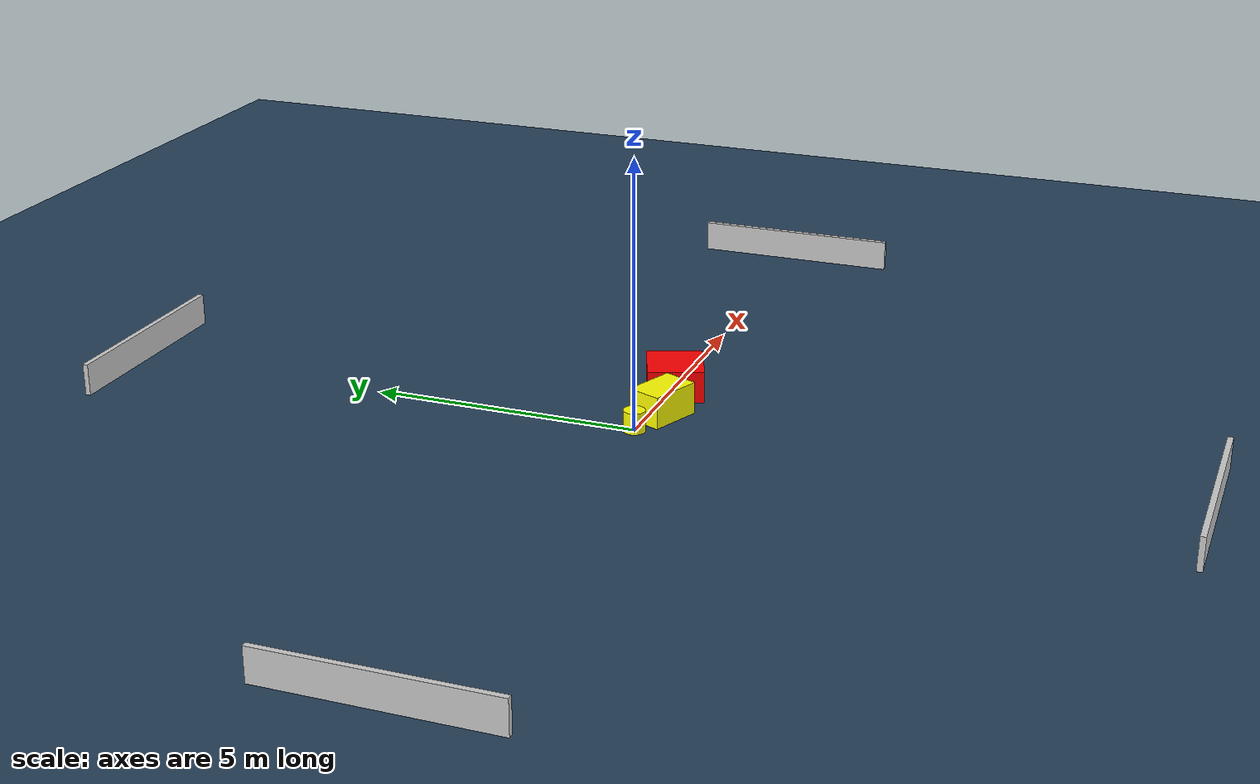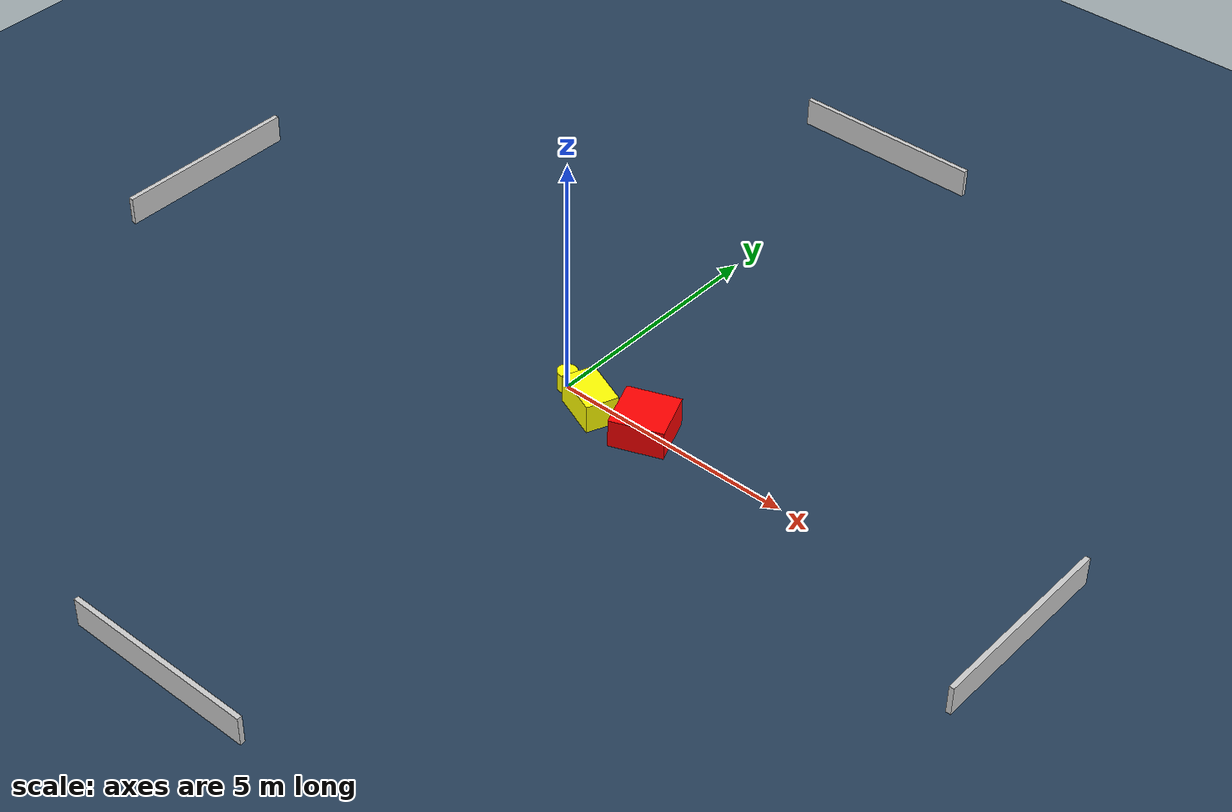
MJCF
<?xml version="1.0" ?>
<mujoco model="generated_environment">
  <option timestep="0.01" integrator="RK4" cone="elliptic"/>
  <default>
    <geom density="1"/>
  </default>
  <asset>
    <texture builtin="gradient" height="3072" name="skybox" rgb1="0.3 0.5 0.7" rgb2="0 0 0" type="skybox" width="512"/>
    <texture builtin="checker" height="300" name="groundplane" rgb1="0.2 0.3 0.4" rgb2="0.1 0.2 0.3" type="2d" width="300"/>
    <material name="groundplane" reflectance="0.2" texrepeat="5 5" texture="groundplane"/>
  </asset>
  <worldbody>
    <light dir="0 0 -1" directional="true" pos="0 0 1.5"/>
    <geom condim="3" friction="0.5 0.005 0.001" material="groundplane" name="floor" pos="0 0 0" size="0 0 0.05" type="plane"/>
    <body name="walls">
      <geom name="wall_1" condim="4" pos="-10.0 0.0 0.3" rgba="0.800000011920929 0.800000011920929 0.800000011920929 1.0" size="0.05 2.0 0.3" type="box"/>
      <geom name="wall_2" condim="4" pos="10.0 0.0 0.3" rgba="0.800000011920929 0.800000011920929 0.800000011920929 1.0" size="0.05 2.0 0.3" type="box"/>
      <geom name="wall_3" condim="4" pos="0.0 -10.0 0.3" rgba="0.800000011920929 0.800000011920929 0.800000011920929 1.0" size="2.0 0.05 0.3" type="box"/>
      <geom name="wall_4" condim="4" pos="0.0 10.0 0.3" rgba="0.800000011920929 0.800000011920929 0.800000011920929 1.0" size="2.0 0.05 0.3" type="box"/>
    </body>
    <body name="robot">
      <joint name="joint_x" type="slide" pos="0 0 0" axis="1 0 0"/>
      <joint name="joint_y" type="slide" pos="0 0 0" axis="0 1 0"/>
      <geom name="robot" type="cylinder" pos="0.0 0.0 0.2" size="0.2 0.2 0.0" mass="5.0" friction="1.0 0.005 0.0001" condim="4" rgba="1.0 1.0 0.0 1.0"/>
    </body>
    <body name="obstacle_1_movable">
      <geom name="obstacle_1_movable" condim="4" pos="0.7777532734236633 -0.24320561450547734 0.3" euler="0 0 157.67413216672406" friction="0.0 0.005 0.001" rgba="1.0 1.0 0.0 1.0" size="0.5026523321756637 0.32934855428937776 0.3" type="box" mass="0.1"/>
      <joint type="free"/>
    </body>
    <body name="obstacle_2_static">
      <geom name="obstacle_2_static" condim="4" pos="1.94898378632223 -0.0696239326385368 0.3" euler="0 0 291.3762339497581" friction="0.0 0.005 0.001" rgba="1.0 0.0 0.0 1.0" size="0.5224110315026966 0.5367765571389187 0.3" type="box"/>
    </body>
  </worldbody>
  <actuator>
    <motor name="actuator_x" joint="joint_x" gear="1" ctrlrange="-1 1"/>
    <motor name="actuator_y" joint="joint_y" gear="1" ctrlrange="-1 1"/>
  </actuator>
</mujoco>
